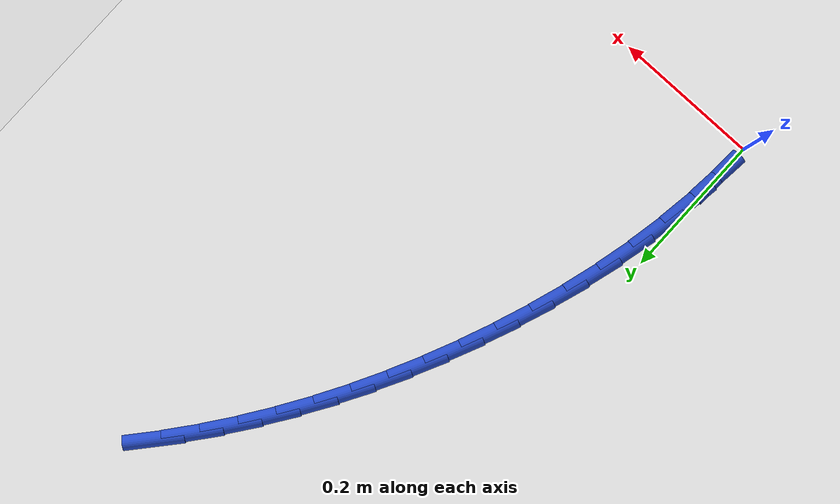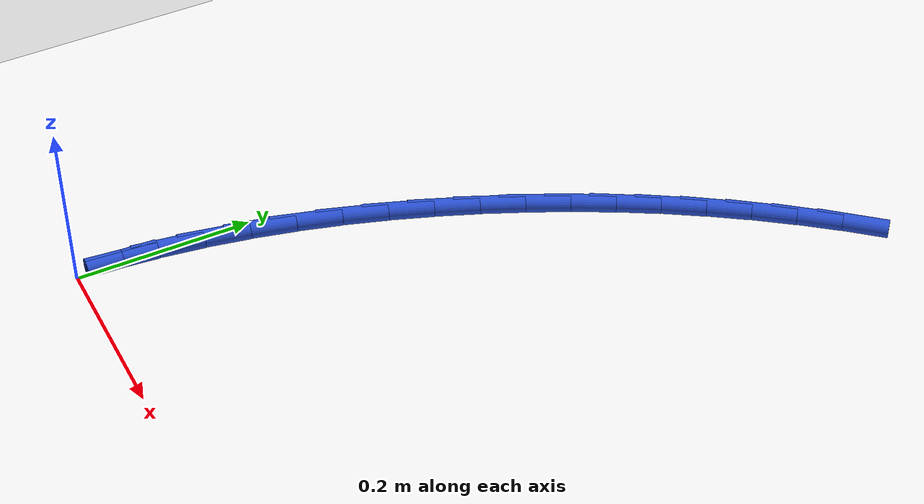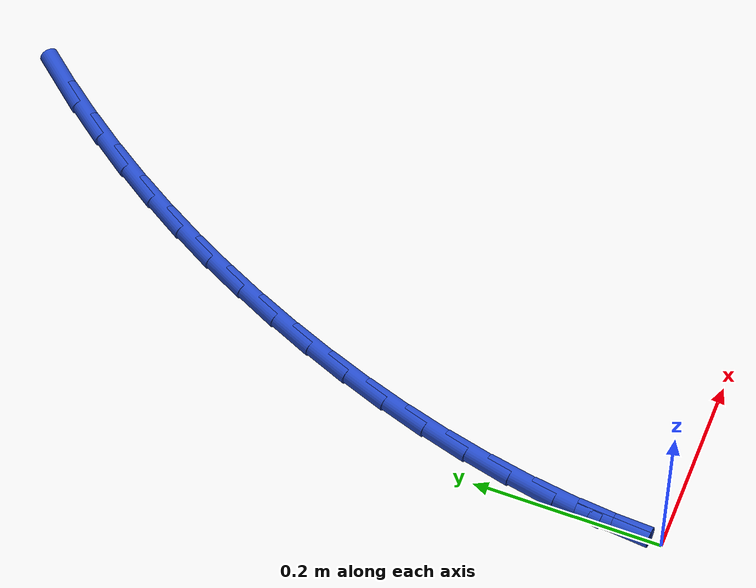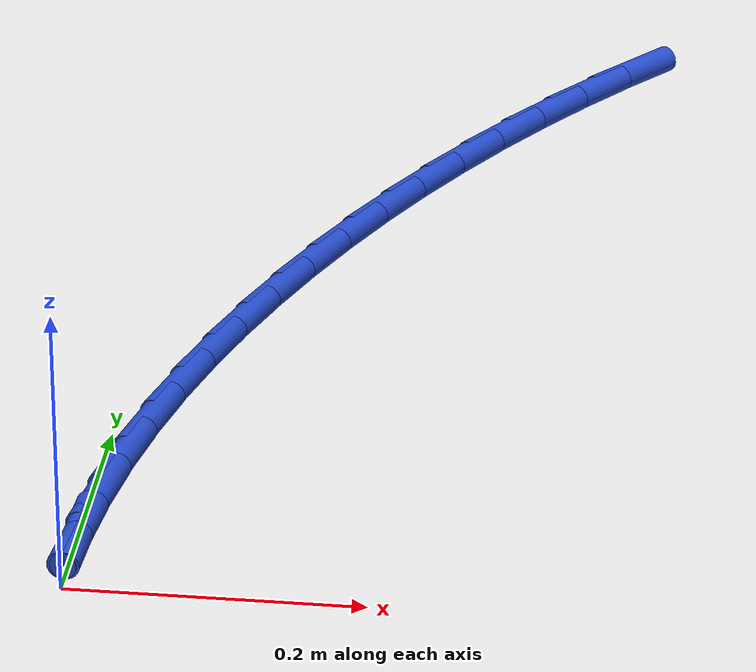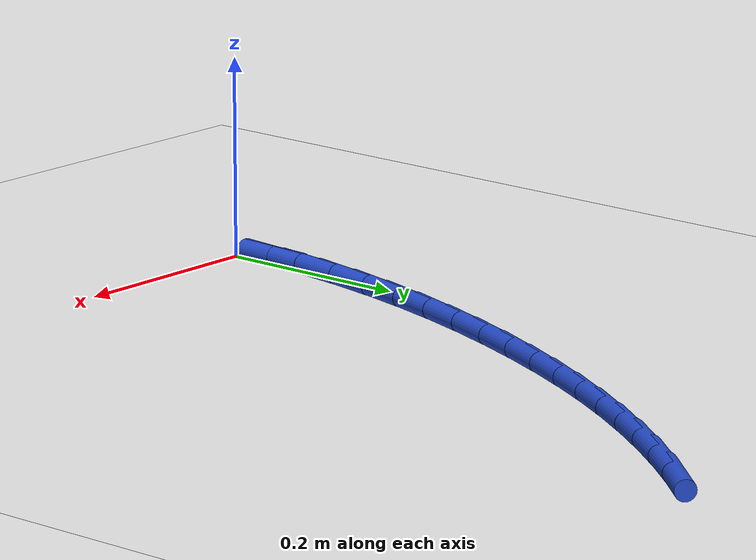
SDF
<sdf version="1.6">
 <world name="default">
  <model name="ground_plane">
   <static>1</static>
   <link name="link">
    <collision name="collision">
     <geometry><plane><normal>0 0 1</normal><size>100 100</size></plane></geometry>
     <surface><friction><ode><mu>100</mu><mu2>50</mu2></ode></friction></surface>
    </collision>
    <visual name="visual">
     <cast_shadows>0</cast_shadows>
     <geometry><plane><normal>0 0 1</normal><size>100 100</size></plane></geometry>
     <material>
      <script><uri>file://media/materials/scripts/gazebo.material</uri><name>Gazebo/WhiteGlow</name></script>
     </material>
    </visual>
   </link>
  </model>
  <model name="line">
   <link name="link_1">
    <pose>0.0023846333573592465 0.05164726774522099 0.01 0 1.57 1.4725105306670718</pose>
    <collision name="collision">
     <geometry><cylinder><radius>0.01</radius><length>0.08</length></cylinder></geometry>
    </collision>
    <visual name="visual">
     <material>
      <script><name>Gazebo/Blue</name><uri>file://media/materials/scripts/gazebo.material</uri></script>
     </material>
     <geometry><cylinder><radius>0.01</radius><length>0.08</length></cylinder></geometry>
    </visual>
   </link>
   <link name="link_2">
    <pose>0.007439835613251447 0.10291524384902694 0.01 0 1.57 1.423034019869949</pose>
    <collision name="collision">
     <geometry><cylinder><radius>0.01</radius><length>0.08</length></cylinder></geometry>
    </collision>
    <visual name="visual">
     <material>
      <script><name>Gazebo/Blue</name><uri>file://media/materials/scripts/gazebo.material</uri></script>
     </material>
     <geometry><cylinder><radius>0.01</radius><length>0.08</length></cylinder></geometry>
    </visual>
   </link>
   <link name="link_3">
    <pose>0.015004989862968705 0.153740218516599 0.01 0 1.57 1.3762527675569038</pose>
    <collision name="collision">
     <geometry><cylinder><radius>0.01</radius><length>0.08</length></cylinder></geometry>
    </collision>
    <visual name="visual">
     <material>
      <script><name>Gazebo/Blue</name><uri>file://media/materials/scripts/gazebo.material</uri></script>
     </material>
     <geometry><cylinder><radius>0.01</radius><length>0.08</length></cylinder></geometry>
    </visual>
   </link>
   <link name="link_4">
    <pose>0.024919479201803124 0.20405848195311835 0.01 0 1.57 1.332141817218762</pose>
    <collision name="collision">
     <geometry><cylinder><radius>0.01</radius><length>0.08</length></cylinder></geometry>
    </collision>
    <visual name="visual">
     <material>
      <script><name>Gazebo/Blue</name><uri>file://media/materials/scripts/gazebo.material</uri></script>
     </material>
     <geometry><cylinder><radius>0.01</radius><length>0.08</length></cylinder></geometry>
    </visual>
   </link>
   <link name="link_5">
    <pose>0.03702268672504682 0.25380632436376643 0.01 0 1.57 1.290637450865331</pose>
    <collision name="collision">
     <geometry><cylinder><radius>0.01</radius><length>0.08</length></cylinder></geometry>
    </collision>
    <visual name="visual">
     <material>
      <script><name>Gazebo/Blue</name><uri>file://media/materials/scripts/gazebo.material</uri></script>
     </material>
     <geometry><cylinder><radius>0.01</radius><length>0.08</length></cylinder></geometry>
    </visual>
   </link>
   <link name="link_6">
    <pose>0.051153995527991866 0.3029200359537244 0.01 0 1.57 1.251647321818144</pose>
    <collision name="collision">
     <geometry><cylinder><radius>0.01</radius><length>0.08</length></cylinder></geometry>
    </collision>
    <visual name="visual">
     <material>
      <script><name>Gazebo/Blue</name><uri>file://media/materials/scripts/gazebo.material</uri></script>
     </material>
     <geometry><cylinder><radius>0.01</radius><length>0.08</length></cylinder></geometry>
    </visual>
   </link>
   <link name="link_7">
    <pose>0.06715278870593037 0.35133590692817346 0.01 0 1.57 1.215059310888163</pose>
    <collision name="collision">
     <geometry><cylinder><radius>0.01</radius><length>0.08</length></cylinder></geometry>
    </collision>
    <visual name="visual">
     <material>
      <script><name>Gazebo/Blue</name><uri>file://media/materials/scripts/gazebo.material</uri></script>
     </material>
     <geometry><cylinder><radius>0.01</radius><length>0.08</length></cylinder></geometry>
    </visual>
   </link>
   <link name="link_8">
    <pose>0.08485844935415449 0.39899022749229507 0.01 0 1.57 1.180740380777531</pose>
    <collision name="collision">
     <geometry><cylinder><radius>0.01</radius><length>0.08</length></cylinder></geometry>
    </collision>
    <visual name="visual">
     <material>
      <script><name>Gazebo/Blue</name><uri>file://media/materials/scripts/gazebo.material</uri></script>
     </material>
     <geometry><cylinder><radius>0.01</radius><length>0.08</length></cylinder></geometry>
    </visual>
   </link>
   <link name="link_9">
    <pose>0.10411089035153306 0.44581944089820025 0.01 0 1.57 1.1476138869905304</pose>
    <collision name="collision">
     <geometry><cylinder><radius>0.01</radius><length>0.08</length></cylinder></geometry>
    </collision>
    <visual name="visual">
     <material>
      <script><name>Gazebo/Blue</name><uri>file://media/materials/scripts/gazebo.material</uri></script>
     </material>
     <geometry><cylinder><radius>0.01</radius><length>0.08</length></cylinder></geometry>
    </visual>
   </link>
   <link name="link_10">
    <pose>0.12481010590435052 0.49177734703776405 0.01 0 1.57 1.1138477608017856</pose>
    <collision name="collision">
     <geometry><cylinder><radius>0.01</radius><length>0.08</length></cylinder></geometry>
    </collision>
    <visual name="visual">
     <material>
      <script><name>Gazebo/Blue</name><uri>file://media/materials/scripts/gazebo.material</uri></script>
     </material>
     <geometry><cylinder><radius>0.01</radius><length>0.08</length></cylinder></geometry>
    </visual>
   </link>
   <link name="link_11">
    <pose>0.14697067383011767 0.536850847376155 0.01 0 1.57 1.0793095955290892</pose>
    <collision name="collision">
     <geometry><cylinder><radius>0.01</radius><length>0.08</length></cylinder></geometry>
    </collision>
    <visual name="visual">
     <material>
      <script><name>Gazebo/Blue</name><uri>file://media/materials/scripts/gazebo.material</uri></script>
     </material>
     <geometry><cylinder><radius>0.01</radius><length>0.08</length></cylinder></geometry>
    </visual>
   </link>
   <link name="link_12">
    <pose>0.17062004800832628 0.5810305630894561 0.01 0 1.57 1.0440853340766052</pose>
    <collision name="collision">
     <geometry><cylinder><radius>0.01</radius><length>0.08</length></cylinder></geometry>
    </collision>
    <visual name="visual">
     <material>
      <script><name>Gazebo/Blue</name><uri>file://media/materials/scripts/gazebo.material</uri></script>
     </material>
     <geometry><cylinder><radius>0.01</radius><length>0.08</length></cylinder></geometry>
    </visual>
   </link>
   <link name="link_13">
    <pose>0.19578568231846805 0.6243071153537505 0.01 0 1.57 1.008271320992604</pose>
    <collision name="collision">
     <geometry><cylinder><radius>0.01</radius><length>0.08</length></cylinder></geometry>
    </collision>
    <visual name="visual">
     <material>
      <script><name>Gazebo/Blue</name><uri>file://media/materials/scripts/gazebo.material</uri></script>
     </material>
     <geometry><cylinder><radius>0.01</radius><length>0.08</length></cylinder></geometry>
    </visual>
   </link>
   <link name="link_14">
    <pose>0.22249503064003473 0.6666711253451216 0.01 0 1.57 0.9719732042534099</pose>
    <collision name="collision">
     <geometry><cylinder><radius>0.01</radius><length>0.08</length></cylinder></geometry>
    </collision>
    <visual name="visual">
     <material>
      <script><name>Gazebo/Blue</name><uri>file://media/materials/scripts/gazebo.material</uri></script>
     </material>
     <geometry><cylinder><radius>0.01</radius><length>0.08</length></cylinder></geometry>
    </visual>
   </link>
   <link name="link_15">
    <pose>0.2507755468525181 0.7081132142396527 0.01 0 1.57 0.9353044651488828</pose>
    <collision name="collision">
     <geometry><cylinder><radius>0.01</radius><length>0.08</length></cylinder></geometry>
    </collision>
    <visual name="visual">
     <material>
      <script><name>Gazebo/Blue</name><uri>file://media/materials/scripts/gazebo.material</uri></script>
     </material>
     <geometry><cylinder><radius>0.01</radius><length>0.08</length></cylinder></geometry>
    </visual>
   </link>
   <link name="link_16">
    <pose>0.28065468483540995 0.748624003213427 0.01 0 1.57 0.8983846157877549</pose>
    <collision name="collision">
     <geometry><cylinder><radius>0.01</radius><length>0.08</length></cylinder></geometry>
    </collision>
    <visual name="visual">
     <material>
      <script><name>Gazebo/Blue</name><uri>file://media/materials/scripts/gazebo.material</uri></script>
     </material>
     <geometry><cylinder><radius>0.01</radius><length>0.08</length></cylinder></geometry>
    </visual>
   </link>
   <link name="link_17">
    <pose>0.31215989846820197 0.7881941134425278 0.01 0 1.57 0.8613371289141685</pose>
    <collision name="collision">
     <geometry><cylinder><radius>0.01</radius><length>0.08</length></cylinder></geometry>
    </collision>
    <visual name="visual">
     <material>
      <script><name>Gazebo/Blue</name><uri>file://media/materials/scripts/gazebo.material</uri></script>
     </material>
     <geometry><cylinder><radius>0.01</radius><length>0.08</length></cylinder></geometry>
    </visual>
   </link>
   <link name="link_141">
    <pose>0.00241211985836267 0.051611173894656394 0.01 0 1.57 1.5240939226800871</pose>
    <collision name="collision">
     <geometry><cylinder><radius>0.01</radius><length>0.08</length></cylinder></geometry>
    </collision>
    <visual name="visual">
     <material>
      <script><name>Gazebo/Blue</name><uri>file://media/materials/scripts/gazebo.material</uri></script>
     </material>
     <geometry><cylinder><radius>0.01</radius><length>0.08</length></cylinder></geometry>
    </visual>
   </link>
  </model>
 </world>
</sdf>
